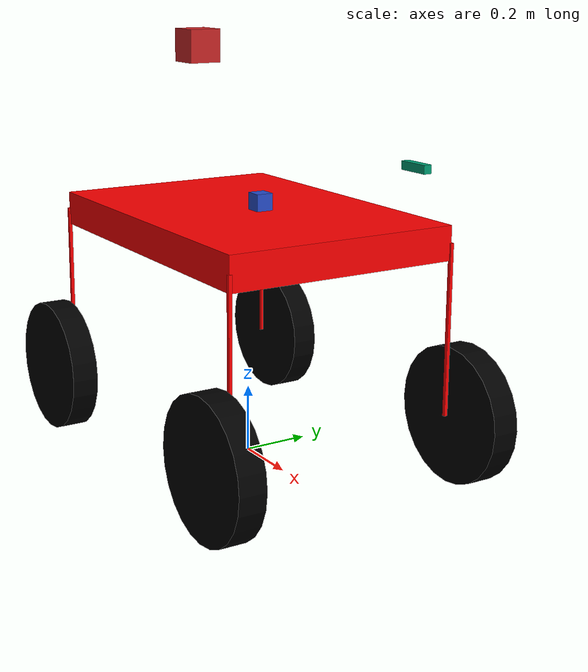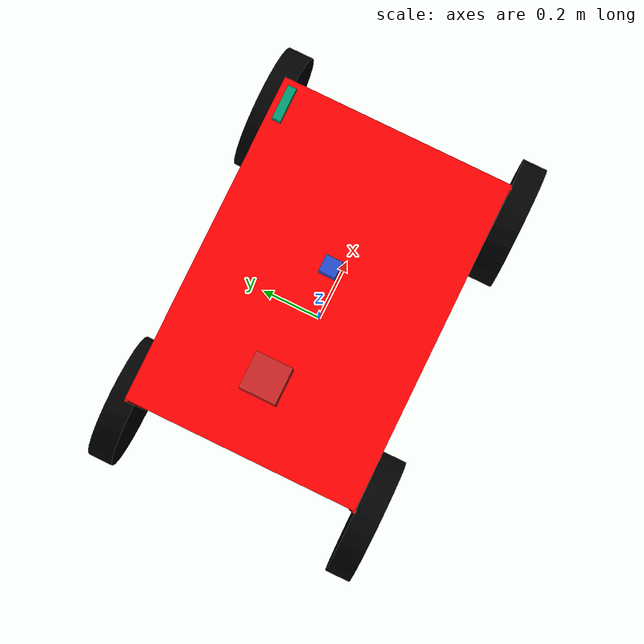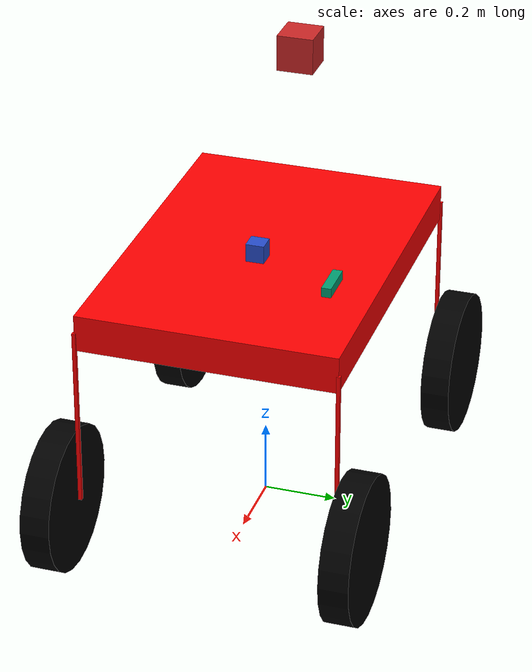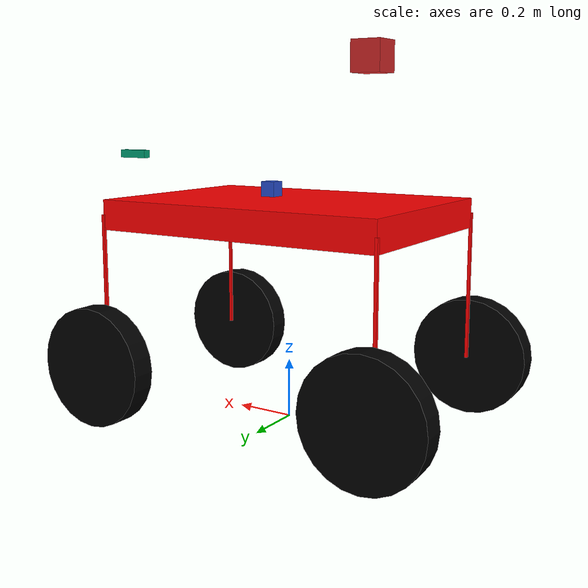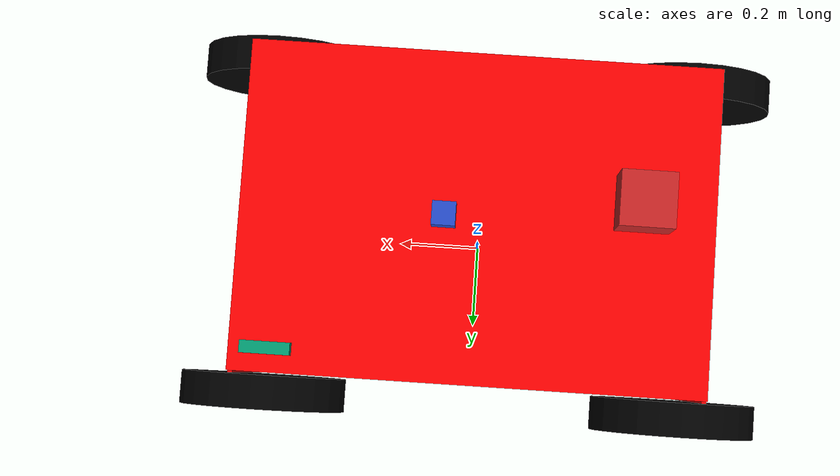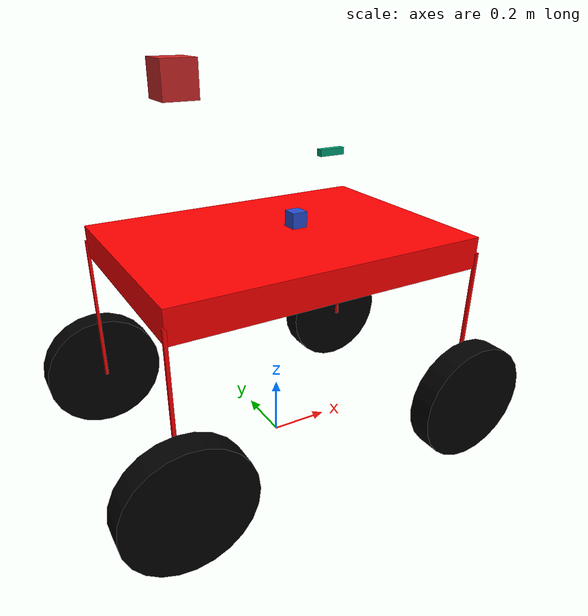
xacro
<?xml version="1.0"?>
<robot xmlns:xacro="http://www.ros.org/wiki/xacro" name="mpav">

<xacro:include filename="$(find krishaka)/urdf/depth_camera.gazebo.xacro"/>
<xacro:include filename="$(find krishaka)/urdf/hokuyo_laser_sensor.gazebo.xacro"/>
<xacro:include filename="$(find krishaka)/urdf/imu_sensor.gazebo.xacro"/>

<link name="base_footprint"/>

<link name="base_link">
    <inertial>
        <origin xyz="0.0 0.0 0.0" rpy="0.0 0.0 0.0"/>
        <mass value="1.0"/>
        <inertia ixx="0.3" ixy="0.0" ixz="0.0"
                 iyy="0.3" iyz="0.0"
                 izz="0.3"/>
    </inertial>
    <visual name="">
        <origin xyz="0.0 0.0 0.0" rpy="0.0 0.0 0.0"/>
        <geometry>
            <box size="1 0.7 0.1"/>
        </geometry>
        <material name="">
            <color rgba="1.0 0.0 0.0 1.0"/>
            <texture filename=""/>
        </material>
    </visual>
    <collision>
        <origin xyz="0.0 0.0 0.0" rpy="0.0 0.0 0.0"/>
        <geometry>
            <box size="1 0.7 0.1"/>
        </geometry>
    </collision>
</link>

<joint name="base_joint" type="fixed">
    <origin xyz="0.0 0.0 0.7" rpy="0.0 0.0 0.0"/>
    <parent link="base_footprint"/>
    <child link="base_link"/>
    <axis xyz="0.0 0.0 0.0"/>
</joint>

<gazebo reference="base_link">
    <turnGravityOff>false</turnGravityOff>
</gazebo>

<link name="front_left_link">
    <inertial>
        <origin xyz="0.0 0.0 0.0" rpy="0.0 0.0 0.0"/>
        <mass value="1"/>
        <inertia ixx="0.3" ixy="0.0" ixz="0.0"
                 iyy="0.3" iyz="0.0"
                 izz="0.3"/>
    </inertial>
    <visual name="">
        <origin xyz="0.0 0.0 0.0" rpy="0.0 0.0 0.0"/>
        <geometry>
            <box size="0.01 0.01 0.5"/>
        </geometry>
        <material name="">
            <color rgba="1.0 0.0 0.0 1.0"/>
            <texture filename=""/>
        </material>
    </visual>
    <collision>
        <origin xyz="0.0 0.0 0.0" rpy="0.0 0.0 0.0"/>
        <geometry>
            <box size="0.01 0.01 0.5"/>
        </geometry>
    </collision>
</link>

<joint name="side_joint_1" type="fixed">
    <origin xyz="0.5 0.35 -0.25" rpy="0.0 0.0 0.0"/>
    <parent link="base_link"/>
    <child link="front_left_link"/>
    <axis xyz="0.0 0.0 0.0"/>
</joint>
<gazebo reference="front_left_link">
    <turnGravityOff>false</turnGravityOff>
</gazebo>

<link name="rear_left_link">
    <inertial>
        <origin xyz="0.0 0.0 0.0" rpy="0.0 0.0 0.0"/>
        <mass value="1"/>
        <inertia ixx="0.3" ixy="0.0" ixz="0.0"
                 iyy="0.3" iyz="0.0"
                 izz="0.3"/>
    </inertial>
    <visual name="">
        <origin xyz="0.0 0.0 0.0" rpy="0.0 0.0 0.0"/>
        <geometry>
            <box size="0.01 0.01 0.5"/>
        </geometry>
        <material name="">
            <color rgba="1.0 0.0 0.0 1.0"/>
            <texture filename=""/>
        </material>
    </visual>
    <collision>
        <origin xyz="0.0 0.0 0.0" rpy="0.0 0.0 0.0"/>
        <geometry>
            <box size="0.01 0.01 0.5"/>
        </geometry>
    </collision>
</link>

<joint name="side_joint_2" type="fixed">
    <origin xyz="-0.5 0.35 -0.25" rpy="0.0 0.0 0.0"/>
    <parent link="base_link"/>
    <child link="rear_left_link"/>
    <axis xyz="0.0 0.0 0.0"/>
</joint>
<gazebo reference="rear_left_link">
    <turnGravityOff>false</turnGravityOff>
</gazebo>

<link name="rear_right_link">
    <inertial>
        <origin xyz="0.0 0.0 0.0" rpy="0.0 0.0 0.0"/>
        <mass value="1"/>
        <inertia ixx="0.3" ixy="0.0" ixz="0.0"
                 iyy="0.3" iyz="0.0"
                 izz="0.3"/>
    </inertial>
    <visual name="">
        <origin xyz="0.0 0.0 0.0" rpy="0.0 0.0 0.0"/>
        <geometry>
            <box size="0.01 0.01 0.5"/>
        </geometry>
        <material name="">
            <color rgba="1.0 0.0 0.0 1.0"/>
            <texture filename=""/>
        </material>
    </visual>
    <collision>
        <origin xyz="0.0 0.0 0.0" rpy="0.0 0.0 0.0"/>
        <geometry>
            <box size="0.01 0.01 0.5"/>
        </geometry>
    </collision>
</link>

<joint name="side_joint_3" type="fixed">
    <origin xyz="-0.5 -0.35 -0.25" rpy="0.0 0.0 0.0"/>
    <parent link="base_link"/>
    <child link="rear_right_link"/>
    <axis xyz="0.0 0.0 0.0"/>
</joint>
<gazebo reference="rear_right_link">
    <turnGravityOff>false</turnGravityOff>
</gazebo>

<link name="rear_front_link">
    <inertial>
        <origin xyz="0.0 0.0 0.0" rpy="0.0 0.0 0.0"/>
        <mass value="1"/>
        <inertia ixx="0.3" ixy="0.0" ixz="0.0"
                 iyy="0.3" iyz="0.0"
                 izz="0.3"/>
    </inertial>
    <visual name="">
        <origin xyz="0.0 0.0 0.0" rpy="0.0 0.0 0.0"/>
        <geometry>
            <box size="0.01 0.01 0.5"/>
        </geometry>
        <material name="">
            <color rgba="1.0 0.0 0.0 1.0"/>
            <texture filename=""/>
        </material>
    </visual>
    <collision>
        <origin xyz="0.0 0.0 0.0" rpy="0.0 0.0 0.0"/>
        <geometry>
            <box size="0.01 0.01 0.5"/>
        </geometry>
    </collision>
</link>

<joint name="side_joint_4" type="fixed">
    <origin xyz="0.5 -0.35 -0.25" rpy="0.0 0.0 0.0"/>
    <parent link="base_link"/>
    <child link="rear_front_link"/>
    <axis xyz="0.0 0.0 0.0"/>
</joint>
<gazebo reference="rear_front_link">
    <turnGravityOff>false</turnGravityOff>
</gazebo>

<!-- All Wheel links and joints -->

<xacro:macro name="wheel" params="name x y">

    <link name="wheel_${name}_link">
        <inertial>
            <origin xyz="0.0 0.0 0.0" rpy="0.0 0.0 0.0"/>
            <mass value="0.5"/>
            <inertia ixx="0.0" ixy="0.0" ixz="0.0" iyy="0.0" iyz="0.0" izz="0.0"/>
        </inertial>
        <visual name="">
            <origin xyz="0.0 0.0 0.0" rpy="0.0 0.0 0.0"/>
            <geometry>
                <cylinder radius="0.2" length="0.08"/>
            </geometry>
            <material name="black">
                <color rgba=".0 .0 0.0 1.0"/>
            </material>
        </visual>
        <collision>
            <origin xyz="0.0 0.0 0.0" rpy="0.0 0.0 0.0"/>
            <geometry>
                <cylinder radius="0.2" length="0.08"/>
            </geometry>
        </collision>
    </link>

    <joint name="wheel_${name}_joint" type="continuous">
        <origin xyz="${x} ${y} -0.50" rpy="1.57 0.0 0.0"/>
        <parent link="base_link"/>
        <child link="wheel_${name}_link"/>
        <axis xyz=".0 0.0 1.0"/>
        <limit effort= "100" velocity="100"/>
        <dynamics damping="0.0" friction="0.0"/>
    </joint>

    <gazebo reference ="wheel_${name}">
    <mu1 value="200.0"/>
    <mu2 value="100.0"/>
    <kp value="10000000.0"/>
    <kd value= "1.0"/>
    <material>Gazebo/Black</material>
  </gazebo>

</xacro:macro>

<!-- Wheel Creating using macros -->
<xacro:wheel name="rear_right"  x="0.50" y =" 0.4"/>
<xacro:wheel name="front_right" x="-0.50" y =" 0.40"/>
<xacro:wheel name="front_left"  x="-0.50" y =" -0.40"/>
<xacro:wheel name="rear_left"   x="0.50" y =" -0.40"/>

<!--Plugins-->
  <gazebo>
  <plugin name="gazebo_ros_control" filename="libgazebo_ros_control.so">
    <robotNamespace>/your_robot_name</robotNamespace>
    <!-- Other controller parameters -->
  </plugin>

  <plugin name="differential_drive_controller" filename="libgazebo_ros_diff_drive.so">
    <leftJoint>wheel_front_left_joint</leftJoint>
    <rightJoint>wheel_front_right_joint</rightJoint>
    <wheelSeparation>0.5</wheelSeparation>
    <wheelDiameter>0.4</wheelDiameter>
    <publishWheelJointState>true</publishWheelJointState>
  </plugin>

    <plugin name="gazebo_ros_pose" filename="libgazebo_ros_pose.so">
        <bodyName>base_link</bodyName>
        <topicName>robot_pose</topicName>
        <updateRate>50</updateRate>
    </plugin>

    <!-- Other plugins -->

    <plugin name="gazebo_ros_tf_publisher" filename="libgazebo_ros_tf_publisher.so">
        <linkName>base_link</linkName>
        <broadcastTF>true</broadcastTF>
        <child_frame_id>base_link</child_frame_id>
    </plugin>

</gazebo>

</robot>

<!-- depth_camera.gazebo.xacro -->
<robot>

<link name="camera_link">
    <collision>
      <origin xyz="0 0 0" rpy="0 0 0"/>
      <geometry>
    <box size="0.1 0.1 0.1"/>
      </geometry>
    </collision>

    <visual>
      <origin xyz="0 0 0" rpy="0 0 0"/>
      <geometry>
    <box size="0.1 0.1 0.1"/>
      </geometry>
      <material name="red"/>
    </visual>

    <inertial>
      <mass value="1e-5" />
      <origin xyz="0 0 0" rpy="0 0 0"/>
      <inertia ixx="1e-6" ixy="0" ixz="0" iyy="1e-6" iyz="0" izz="1e-6" />
    </inertial>
  </link>

   <joint name="camera_joint" type="fixed">
    <axis xyz="0 1 0" />
    <origin xyz="-0.3 0 0.5" rpy="0 0 3.14"/>
    <parent link="base_link"/>
    <child link="camera_link"/>
  </joint>

<gazebo reference="camera_link">
  <sensor name="depth_camera" type="depth">
    <update_rate>20</update_rate>
    <camera>
      <horizontal_fov>1.047198</horizontal_fov>
      <image>
        <width>640</width>
        <height>480</height>
        <format>R8G8B8</format>
      </image>
      <clip>
        <near>0.05</near>
        <far>3</far>
      </clip>
    </camera>
    <plugin name="depth_camera_controller" filename="libgazebo_ros_openni_kinect.so">
      <baseline>0.2</baseline>
      <alwaysOn>true</alwaysOn>
      <updateRate>1.0</updateRate>
      <cameraName>depth_camera_ir</cameraName>
      <imageTopicName>/depth_camera/color/image_raw</imageTopicName>
      <cameraInfoTopicName>/depth_camera/color/camera_info</cameraInfoTopicName>
      <depthImageTopicName>/depth_camera/depth/image_raw</depthImageTopicName>
      <depthImageInfoTopicName>/depth_camera/depth/camera_info</depthImageInfoTopicName>
      <pointCloudTopicName>/depth_camera/depth/points</pointCloudTopicName>
      <frameName>camera_link</frameName>
      <pointCloudCutoff>0.5</pointCloudCutoff>
      <pointCloudCutoffMax>3.0</pointCloudCutoffMax>
      <distortionK1>0.00000001</distortionK1>
      <distortionK2>0.00000001</distortionK2>
      <distortionK3>0.00000001</distortionK3>
      <distortionT1>0.00000001</distortionT1>
      <distortionT2>0.00000001</distortionT2>
      <CxPrime>0</CxPrime>
      <Cx>0</Cx>
      <Cy>0</Cy>
      <focalLength>0</focalLength>
      <hackBaseline>0</hackBaseline>
    </plugin>
  </sensor>
</gazebo>

</robot>

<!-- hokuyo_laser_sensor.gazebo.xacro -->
<robot>
<link name="hokuyo_sensor">
  <visual>
    <origin xyz="0 0 0" rpy="0 0 0"/>
   <geometry>
     <box size="0.05 0.05 0.05"/>
   </geometry>
   <material name="Blue"/>
   </visual>
 </link>

<joint name="hokuyo_joint" type="fixed">
  <origin xyz="0.07 0 0.08" rpy="0 0 0"/>
  <parent link="base_link"/>
  <child link="hokuyo_sensor"/>
</joint>

<gazebo reference="hokuyo_sensor">
  <material>Gazebo/Blue</material>
  <turnGravityOff>false</turnGravityOff>
  <sensor type="ray" name="chassis_hokuyo_sensor">
   <pose>0.025 0 0 0 0 0</pose>
   <visualize>false</visualize>
   <update_rate>40</update_rate>
   <ray>
     <scan>
       <horizontal>
         <samples>720</samples>
         <resolution>1</resolution>
         <min_angle>-1.57</min_angle>
         <max_angle>1.57</max_angle>
        </horizontal>
      </scan>
     <range>
        <min>0.10</min>
        <max>10.0</max>
        <resolution>0.001</resolution>
      </range>
     </ray>
     <plugin name="gazebo_ros_head_hokuyo_controller"
          filename="libgazebo_ros_laser.so">
        <topicName>/scan</topicName>
        <frameName>hokuyo_sensor</frameName>
       </plugin>
      </sensor>
     </gazebo>
</robot>

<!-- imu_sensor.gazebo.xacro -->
<robot>

<link name="imu_link">

    <visual name="">
        <origin xyz="0.0 0.0 0.0" rpy="0.0 0.0 0.0"/>
        <geometry>
            <box size="0.1 0.025 0.025"/>
        </geometry>

    </visual>
    <collision>
        <origin xyz="0.0 0.0 0.0" rpy="0.0 0.0 0.0"/>
        <geometry>
            <box size="0.07 0.5 0.08"/>
        </geometry>
    </collision>
</link>

 <joint name="imu_joint" type="fixed">
    <origin xyz="0.4 0.3 0.2" rpy="0.0 0.0 0.0"/>
    <parent link="base_link"/>
    <child link="imu_link"/>

 </joint>

 <gazebo reference="imu_link">
    <gravity>true</gravity>
    <sensor name="imu_sensor" type="imu">
      <always_on>true</always_on>
      <update_rate>100</update_rate>
      <visualize>true</visualize>
      <topic>__default_topic__</topic>
      <plugin filename="libgazebo_ros_imu_sensor.so" name="imu_plugin">
        <topicName>imu</topicName>
        <bodyName>imu_link</bodyName>
        <updateRateHZ>10.0</updateRateHZ>
        <gaussianNoise>0.0</gaussianNoise>
        <xyzOffset>0 0 0</xyzOffset>
        <rpyOffset>0 0 0</rpyOffset>
        <frameName>imu_link</frameName>
        <initialOrientationAsReference>false</initialOrientationAsReference>
      </plugin>
      <pose>0 0 0 0 0 0</pose>
    </sensor>
  </gazebo>
</robot>
